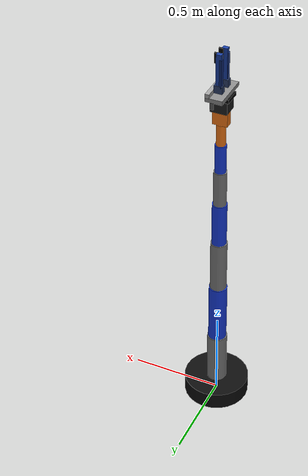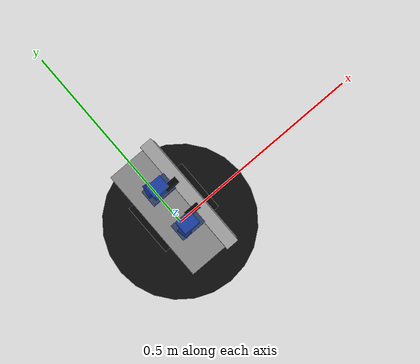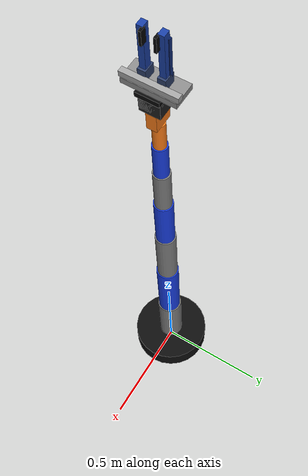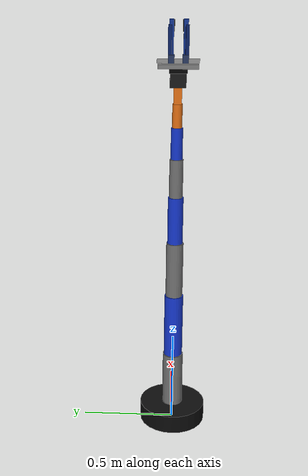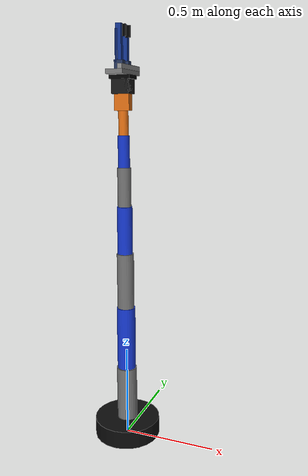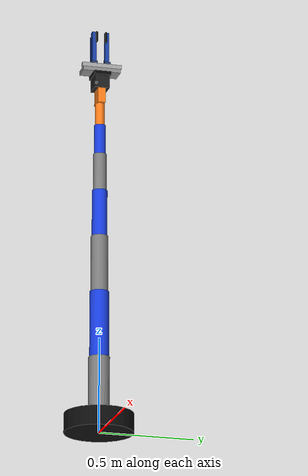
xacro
<?xml version="1.0"?>
<robot xmlns:xacro="http://www.ros.org/wiki/xacro" name="bcr_arm">
    <xacro:arg name="initial_positions_file" default="initial_positions.yaml" />

    <!-- Import bcr_arm urdf file -->
    <xacro:include filename="$(find bcr_arm_description)/urdf/bcr_arm.urdf.xacro" />

    <!-- Import control_xacro -->
    <xacro:include filename="bcr_arm.ros2_control.xacro" />

    <xacro:bcr_arm_ros2_control name="FakeSystem" initial_positions_file="$(arg initial_positions_file)"/>

</robot>

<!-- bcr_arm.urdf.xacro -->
<robot name="bcr_arm" xmlns:xacro="http://www.ros.org/wiki/xacro">
<!-- 包含所有的头文件 -->
<xacro:include filename="$(find bcr_arm_description)/urdf/bcr_arm_ros2_controllers.xacro"/>
<xacro:include filename="$(find bcr_arm_description)/urdf/bcr_arm_materials.xacro"/>
<xacro:include filename="$(find bcr_arm_description)/urdf/bcr_arm_links_macros.xacro"/>
<xacro:include filename="$(find bcr_arm_description)/urdf/gripper.xacro"/>

  <!-- Fixed world frame for Gazebo -->
  <link name="world"/>

  <joint name="world_to_base" type="fixed">
    <parent link="world"/>
    <child link="base_link"/>
    <origin xyz="0 0 0" rpy="0 0 0"/>
  </joint>

  <!-- Base link -->
  <link name="base_link">
    <visual>
      <origin xyz="0 0 0.05" rpy="0 0 0"/>
      <geometry>
        <cylinder radius="0.18" length="0.10"/>
      </geometry>
      <material name="black"/>
    </visual>

    <collision>
      <origin xyz="0 0 0.05" rpy="0 0 0"/>
      <geometry>
        <cylinder radius="0.18" length="0.10"/>
      </geometry>
    </collision>

    <xacro:cylinder_inertial mass="5.0" radius="0.18" length="0.10"/>
  </link>

  <!-- Arm links -->
  <!-- 这里使用的就是bcr_arm_links_macros -->
  <xacro:cylinder_link name="link1" length="0.30" radius="0.055" color="gray"   mass="1.5"/>
  <xacro:cylinder_link name="link2" length="0.35" radius="0.050" color="blue"   mass="1.3"/>
  <xacro:cylinder_link name="link3" length="0.30" radius="0.045" color="gray"   mass="1.1"/>
  <xacro:cylinder_link name="link4" length="0.25" radius="0.040" color="blue"   mass="0.9"/>
  <xacro:cylinder_link name="link5" length="0.20" radius="0.035" color="gray"   mass="0.7"/>
  <xacro:cylinder_link name="link6" length="0.16" radius="0.030" color="blue"   mass="0.5"/>
  <xacro:cylinder_link name="link7" length="0.12" radius="0.025" color="orange" mass="0.4"/>

  <!-- Tool frame -->
  <link name="tool0">
    <visual>
      <origin xyz="0 0 0.04" rpy="0 0 0"/>
      <geometry>
        <box size="0.08 0.04 0.08"/>
      </geometry>
      <material name="orange"/>
    </visual>

    <collision>
      <origin xyz="0 0 0.04" rpy="0 0 0"/>
      <geometry>
        <box size="0.08 0.04 0.08"/>
      </geometry>
    </collision>

    <xacro:box_inertial mass="0.3" x="0.08" y="0.04" z="0.08"/>
  </link>

  <!-- 7-DOF joints -->

  <!-- joint1: base yaw -->
  <joint name="joint1" type="revolute">
    <parent link="base_link"/>
    <child link="link1"/>
    <origin xyz="0 0 0.10" rpy="0 0 0"/>
    <axis xyz="0 0 1"/>
    <limit lower="-3.1416" upper="3.1416" effort="100.0" velocity="1.5"/>
  </joint>

  <!-- joint2: shoulder pitch -->
  <joint name="joint2" type="revolute">
    <parent link="link1"/>
    <child link="link2"/>
    <origin xyz="0 0 0.30" rpy="0 0 0"/>
    <axis xyz="0 1 0"/>
    <limit lower="-2.2" upper="2.2" effort="100.0" velocity="1.5"/>
  </joint>

  <!-- joint3: elbow pitch -->
  <joint name="joint3" type="revolute">
    <parent link="link2"/>
    <child link="link3"/>
    <origin xyz="0 0 0.35" rpy="0 0 0"/>
    <axis xyz="0 1 0"/>
    <limit lower="-3.1416" upper="3.1416" effort="100.0" velocity="1.5"/>
  </joint>

  <!-- joint4: wrist roll -->
  <joint name="joint4" type="revolute">
    <parent link="link3"/>
    <child link="link4"/>
    <origin xyz="0 0 0.30" rpy="0 0 0"/>
    <axis xyz="1 0 0"/>
    <limit lower="-3.1416" upper="3.1416" effort="80.0" velocity="1.5"/>
  </joint>

  <!-- joint5: wrist pitch -->
  <joint name="joint5" type="revolute">
    <parent link="link4"/>
    <child link="link5"/>
    <origin xyz="0 0 0.25" rpy="0 0 0"/>
    <axis xyz="0 1 0"/>
    <limit lower="-3.1416" upper="3.1416" effort="80.0" velocity="1.5"/>
  </joint>

  <!-- joint6: wrist roll -->
  <joint name="joint6" type="revolute">
    <parent link="link5"/>
    <child link="link6"/>
    <origin xyz="0 0 0.20" rpy="0 0 0"/>
    <axis xyz="1 0 0"/>
    <limit lower="-3.1416" upper="3.1416" effort="60.0" velocity="1.5"/>
  </joint>

  <!-- joint7: final pitch -->
  <joint name="joint7" type="revolute">
    <parent link="link6"/>
    <child link="link7"/>
    <origin xyz="0 0 0.16" rpy="0 0 0"/>
    <axis xyz="0 1 0"/>
    <limit lower="-3.1416" upper="3.1416" effort="60.0" velocity="1.5"/>
  </joint>

  <!-- fixed tool joint -->
  <joint name="tool_joint" type="fixed">
    <parent link="link7"/>
    <child link="tool0"/>
    <origin xyz="0 0 0.12" rpy="0 0 0"/>
  </joint>
  <xacro:bcr_arm_fixed_gripper parent_link="tool0" prefix="gripper_"/>

<!-- ros2_control 硬件接口 + Gazebo 插件 -->
<!-- 加载控制器配置文件，连接仿真器与控制系统 -->
  <xacro:bcr_arm_ros2_control name="bcr_arm_system"/>
</robot>

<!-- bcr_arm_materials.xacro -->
<robot xmlns:xacro="http://www.ros.org/wiki/xacro">

  <material name="black">
    <color rgba="0.05 0.05 0.05 1.0"/>
  </material>

  <material name="gray">
    <color rgba="0.5 0.5 0.5 1.0"/>
  </material>

  <material name="blue">
    <color rgba="0.1 0.25 0.9 1.0"/>
  </material>

  <material name="orange">
    <color rgba="1.0 0.5 0.1 1.0"/>
  </material>

</robot>

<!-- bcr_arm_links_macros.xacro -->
<robot xmlns:xacro="http://www.ros.org/wiki/xacro">

  <!-- 引入惯性计算宏 -->
  <xacro:include filename="$(find bcr_arm_description)/urdf/bcr_arm_inertial_macros.xacro"/>

  <!-- 圆柱连杆宏 -->
  <xacro:macro name="cylinder_link" params="name length radius color mass">
    <link name="${name}">
      <visual>
        <origin xyz="0 0 ${length / 2.0}" rpy="0 0 0"/>
        <geometry>
          <cylinder radius="${radius}" length="${length}"/>
        </geometry>
        <material name="${color}"/>
      </visual>

      <collision>
        <origin xyz="0 0 ${length / 2.0}" rpy="0 0 0"/>
        <geometry>
          <cylinder radius="${radius}" length="${length}"/>
        </geometry>
      </collision>

      <xacro:cylinder_inertial mass="${mass}" radius="${radius}" length="${length}"/>
    </link>
  </xacro:macro>

</robot>

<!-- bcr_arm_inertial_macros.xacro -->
<robot xmlns:xacro="http://www.ros.org/wiki/xacro">

  <!-- Inertial helper 惯性参数-->

  <!-- 圆柱的转动参数 -->
  <xacro:macro name="cylinder_inertial" params="mass radius length">
    <inertial>
      <origin xyz="0 0 0" rpy="0 0 0"/>
      <mass value="${mass}"/>
      <inertia
        ixx="${mass * (3.0 * radius * radius + length * length) / 12.0}"
        iyy="${mass * (3.0 * radius * radius + length * length) / 12.0}"
        izz="${mass * radius * radius / 2.0}"
        ixy="0.0"
        ixz="0.0"
        iyz="0.0"/>
    </inertial>
  </xacro:macro>

  <!-- 长方体的转动参数 -->
  <xacro:macro name="box_inertial" params="mass x y z">
    <inertial>
      <origin xyz="0 0 0" rpy="0 0 0"/>
      <mass value="${mass}"/>
    <!-- 转动惯性 -->
     <!-- 这里需要六个参数来描述物体的转动惯性，是一个3×3的对称矩阵 -->
      <!-- ixx  ixy  ixz
           ixy  iyy  iyz
           ixz  iyz  izz -->
      <!--ixx是绕x轴的运动  -->
      <!-- ixy=0 旋转是正的，绕x轴旋转不会歪的y轴上 -->
      <inertia
        ixx="${mass * (y*y + z*z) / 12.0}"
        iyy="${mass * (x*x + z*z) / 12.0}"
        izz="${mass * (x*x + y*y) / 12.0}"
        ixy="0.0"
        ixz="0.0"
        iyz="0.0"/>
    </inertial>
  </xacro:macro>

</robot>

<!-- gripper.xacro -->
<robot xmlns:xacro="http://www.ros.org/wiki/xacro">

  <!-- Controllable Parallel Gripper                         -->
  <!-- Logic kept:                                           -->
  <!--   gripper_left_finger_joint                           -->
  <!--   gripper_right_finger_joint                          -->
  <!--   both prismatic joints                               -->
  <!-- Convention:                                           -->
  <!--   0.000 = close / minimum gap, no overlap              -->
  <!--   0.015 = grasp 0.08m cube approximately              -->
  <!--   0.035 = open, gap > 0.08m                            -->

  <xacro:macro name="bcr_arm_fixed_gripper" params="parent_link:=tool0 prefix:=gripper_">

    <!-- Gripper base / palm       -->
    <link name="${prefix}base_link">

      <visual>
        <origin xyz="0 0 0.035" rpy="0 0 0"/>
        <geometry>
          <box size="0.09 0.08 0.07"/>
        </geometry>
        <material name="${prefix}dark_gray">
          <color rgba="0.12 0.12 0.12 1.0"/>
        </material>
      </visual>

      <visual>
        <origin xyz="0 0 0.080" rpy="0 0 0"/>
        <geometry>
          <box size="0.11 0.09 0.02"/>
        </geometry>
        <material name="${prefix}black">
          <color rgba="0.03 0.03 0.03 1.0"/>
        </material>
      </visual>

      <visual>
        <origin xyz="0.035 0 0.040" rpy="0 0 0"/>
        <geometry>
          <box size="0.02 0.08 0.055"/>
        </geometry>
        <material name="${prefix}gray">
          <color rgba="0.35 0.35 0.35 1.0"/>
        </material>
      </visual>

      <inertial>
        <origin xyz="0 0 0.04" rpy="0 0 0"/>
        <mass value="0.15"/>
        <inertia
          ixx="0.0001" ixy="0.0" ixz="0.0"
          iyy="0.0001" iyz="0.0"
          izz="0.0001"/>
      </inertial>
    </link>

    <joint name="${prefix}base_fixed_joint" type="fixed">
      <parent link="${parent_link}"/>
      <child link="${prefix}base_link"/>
      <origin xyz="0 0 0.08" rpy="0 0 0"/>
    </joint>

    <!-- Horizontal slider rail    -->
    <link name="${prefix}slider_bar_link">

      <visual>
        <origin xyz="0 0 0.020" rpy="0 0 0"/>
        <geometry>
          <box size="0.09 0.20 0.022"/>
        </geometry>
        <material name="${prefix}metal_gray">
          <color rgba="0.55 0.55 0.55 1.0"/>
        </material>
      </visual>

      <visual>
        <origin xyz="0.032 0 0.043" rpy="0 0 0"/>
        <geometry>
          <box size="0.022 0.21 0.022"/>
        </geometry>
        <material name="${prefix}light_gray">
          <color rgba="0.65 0.65 0.65 1.0"/>
        </material>
      </visual>

      <inertial>
        <origin xyz="0 0 0.02" rpy="0 0 0"/>
        <mass value="0.08"/>
        <inertia
          ixx="0.00005" ixy="0.0" ixz="0.0"
          iyy="0.00005" iyz="0.0"
          izz="0.00005"/>
      </inertial>
    </link>

    <joint name="${prefix}slider_bar_fixed_joint" type="fixed">
      <parent link="${prefix}base_link"/>
      <child link="${prefix}slider_bar_link"/>
      <origin xyz="0 0 0.08" rpy="0 0 0"/>
    </joint>

    <!-- Left finger assembly      -->
    <link name="${prefix}left_finger_link">

      <visual>
        <origin xyz="0 0 0.020" rpy="0 0 0"/>
        <geometry>
          <box size="0.045 0.030 0.04"/>
        </geometry>
        <material name="${prefix}left_slider">
          <color rgba="0.18 0.25 0.42 1.0"/>
        </material>
      </visual>

      <visual>
        <origin xyz="0 0 0.115" rpy="0 0 0"/>
        <geometry>
          <box size="0.028 0.022 0.18"/>
        </geometry>
        <material name="${prefix}blue">
          <color rgba="0.10 0.25 0.65 1.0"/>
        </material>
      </visual>

      <!-- 左夹爪内侧夹持垫：靠近 +Y 方向 -->
      <visual>
        <origin xyz="0.018 0.010 0.175" rpy="0 0 0"/>
        <geometry>
          <box size="0.024 0.010 0.055"/>
        </geometry>
        <material name="${prefix}rubber">
          <color rgba="0.02 0.02 0.02 1.0"/>
        </material>
      </visual>

      <visual>
        <origin xyz="-0.012 -0.006 0.105" rpy="0 0 0.20"/>
        <geometry>
          <box size="0.012 0.018 0.15"/>
        </geometry>
        <material name="${prefix}blue_dark">
          <color rgba="0.06 0.16 0.45 1.0"/>
        </material>
      </visual>

      <!-- 物理抓取用 collision：左夹爪主体 -->
      <collision name="left_finger_body_collision">
        <origin xyz="0 0 0.115" rpy="0 0 0"/>
        <geometry>
          <box size="0.028 0.022 0.18"/>
        </geometry>
      </collision>

      <!-- 物理抓取用 collision：左夹爪内侧夹持垫 -->
      <collision name="left_finger_inner_pad_collision">
        <origin xyz="0.018 0.010 0.175" rpy="0 0 0"/>
        <geometry>
          <box size="0.024 0.010 0.055"/>
        </geometry>
      </collision>

      <inertial>
        <origin xyz="0 0 0.10" rpy="0 0 0"/>
        <mass value="0.05"/>
        <inertia
          ixx="0.00005" ixy="0.0" ixz="0.0"
          iyy="0.00005" iyz="0.0"
          izz="0.00005"/>
      </inertial>
    </link>

    <!--
      左指初始在 y=-0.035。
      axis = -Y，所以 q 增大时向外打开。
    -->
    <joint name="${prefix}left_finger_joint" type="prismatic">
      <parent link="${prefix}slider_bar_link"/>
      <child link="${prefix}left_finger_link"/>
      <origin xyz="0 -0.035 0.035" rpy="0 0 0"/>
      <axis xyz="0 -1 0"/>
      <limit lower="0.0" upper="0.06" effort="30.0" velocity="0.05"/>
    </joint>

    <!-- Right finger assembly     -->
    <link name="${prefix}right_finger_link">

      <visual>
        <origin xyz="0 0 0.020" rpy="0 0 0"/>
        <geometry>
          <box size="0.045 0.030 0.04"/>
        </geometry>
        <material name="${prefix}right_slider">
          <color rgba="0.18 0.25 0.42 1.0"/>
        </material>
      </visual>

      <visual>
        <origin xyz="0 0 0.115" rpy="0 0 0"/>
        <geometry>
          <box size="0.028 0.022 0.18"/>
        </geometry>
        <material name="${prefix}blue"/>
      </visual>

      <!-- 右夹爪内侧夹持垫：靠近 -Y 方向 -->
      <visual>
        <origin xyz="0.018 -0.010 0.175" rpy="0 0 0"/>
        <geometry>
          <box size="0.024 0.010 0.055"/>
        </geometry>
        <material name="${prefix}rubber"/>
      </visual>

      <visual>
        <origin xyz="-0.012 0.006 0.105" rpy="0 0 -0.20"/>
        <geometry>
          <box size="0.012 0.018 0.15"/>
        </geometry>
        <material name="${prefix}blue_dark"/>
      </visual>

      <!-- 物理抓取用 collision：右夹爪主体 -->
      <collision name="right_finger_body_collision">
        <origin xyz="0 0 0.115" rpy="0 0 0"/>
        <geometry>
          <box size="0.028 0.022 0.18"/>
        </geometry>
      </collision>

      <!-- 物理抓取用 collision：右夹爪内侧夹持垫 -->
      <collision name="right_finger_inner_pad_collision">
        <origin xyz="0.018 -0.010 0.175" rpy="0 0 0"/>
        <geometry>
          <box size="0.024 0.010 0.055"/>
        </geometry>
      </collision>

      <inertial>
        <origin xyz="0 0 0.10" rpy="0 0 0"/>
        <mass value="0.05"/>
        <inertia
          ixx="0.00005" ixy="0.0" ixz="0.0"
          iyy="0.00005" iyz="0.0"
          izz="0.00005"/>
      </inertial>
    </link>

    <!--
      右指初始在 y=+0.035。
      axis = +Y，所以 q 增大时向外打开。
    -->
    <joint name="${prefix}right_finger_joint" type="prismatic">
      <parent link="${prefix}slider_bar_link"/>
      <child link="${prefix}right_finger_link"/>
      <origin xyz="0 0.035 0.035" rpy="0 0 0"/>
      <axis xyz="0 1 0"/>
      <limit lower="0.0" upper="0.06" effort="30.0" velocity="0.05"/>
    </joint>

  </xacro:macro>

</robot>
